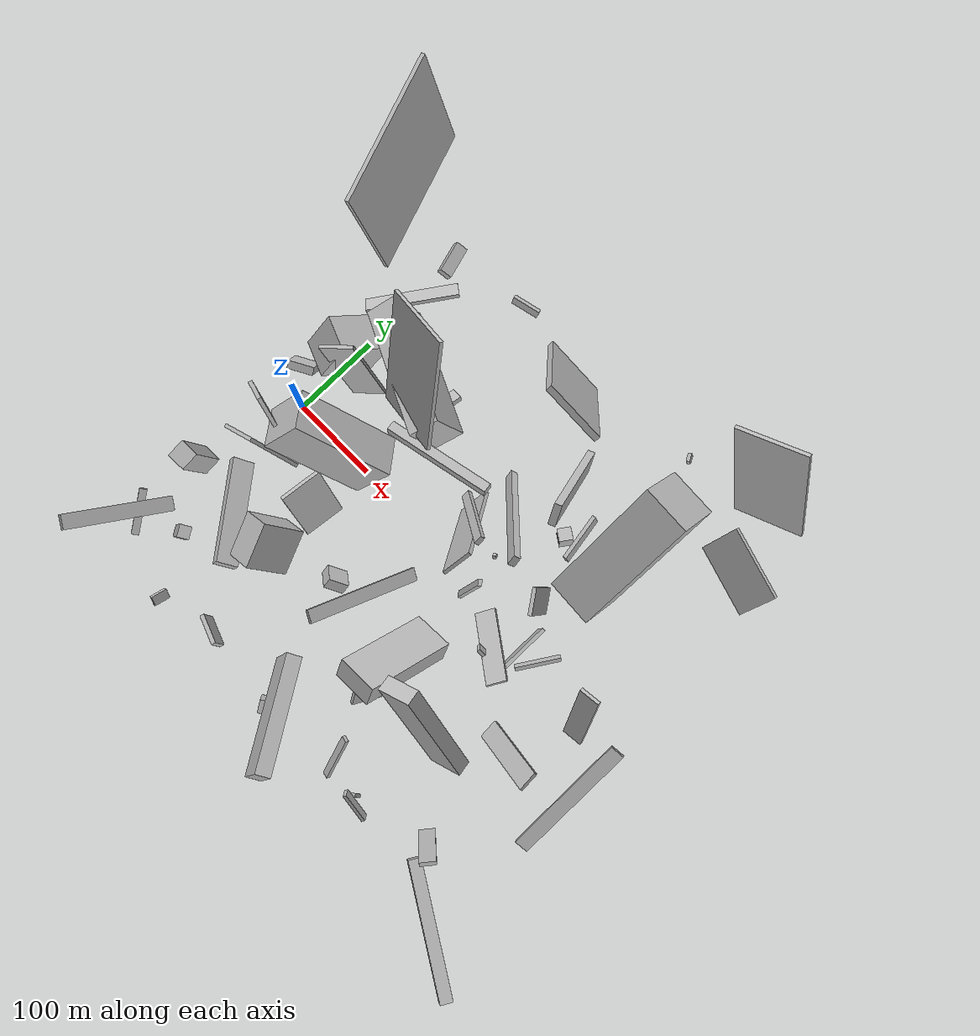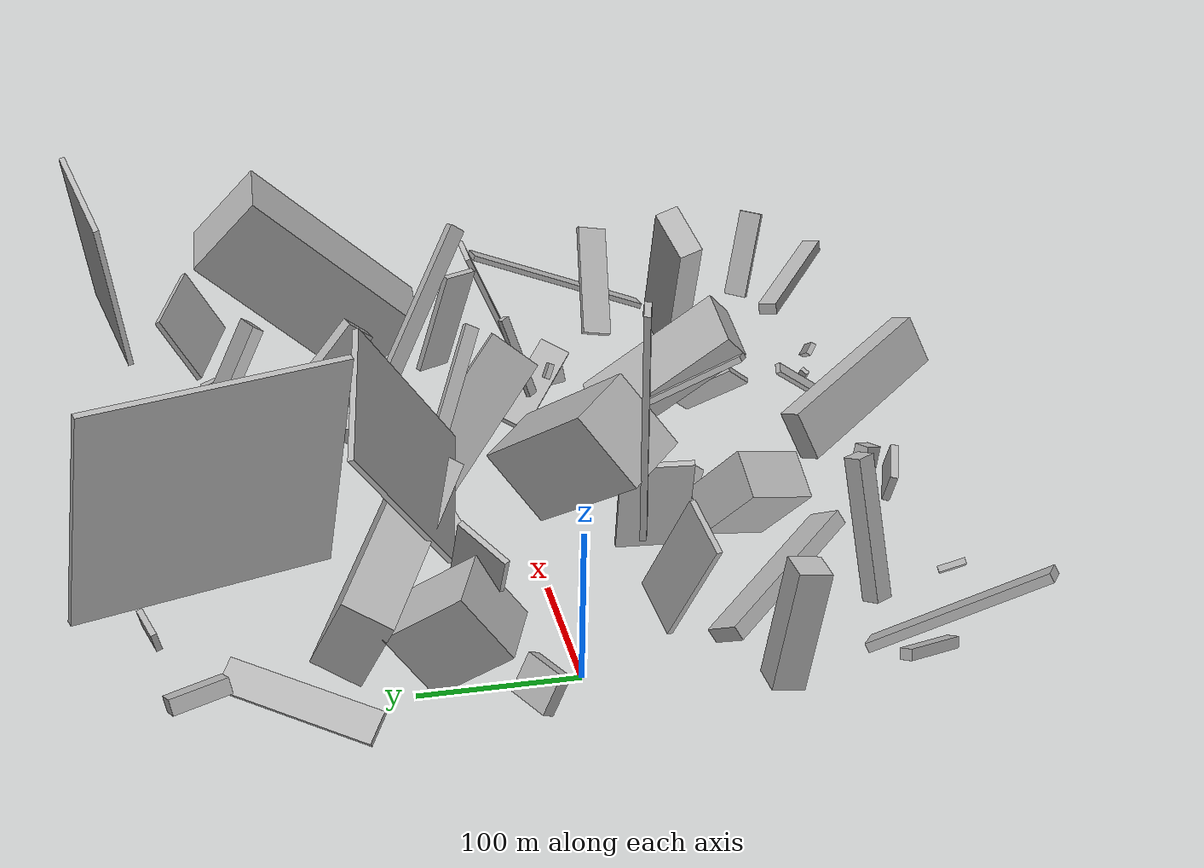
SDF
<sdf version="1.6">
 <world name="default">
  <scene>
   <sky><clouds><speed>12</speed></clouds></sky>
   <ambient>0.4 0.4 0.4 1</ambient>
   <background>0.7 0.7 0.7 1</background>
   <shadows>1</shadows>
  </scene>
  <gravity>0 0 -9.8066</gravity>
  <magnetic_field>6e-06 2.3e-05 -4.2e-05</magnetic_field>
  <physics default="0" name="default_physics" type="ode">
   <ode>
    <solver>
     <type>quick</type>
     <iters>10</iters>
     <sor>1.0</sor>
     <use_dynamic_moi_rescaling>0</use_dynamic_moi_rescaling>
    </solver>
    <constraints>
     <cfm>0</cfm>
     <erp>0.2</erp>
     <contact_max_correcting_vel>100</contact_max_correcting_vel>
     <contact_surface_layer>0.001</contact_surface_layer>
    </constraints>
   </ode>
   <max_step_size>0.004</max_step_size>
   <real_time_factor>1</real_time_factor>
   <real_time_update_rate>250</real_time_update_rate>
  </physics>
  <light name="sun" type="directional">
   <pose>0 0 10 0 0 0</pose>
   <diffuse>0.8 0.8 0.8 1</diffuse>
   <specular>0.2 0.2 0.2 1</specular>
   <attenuation>
    <range>1000</range>
    <constant>0.9</constant>
    <linear>0.01</linear>
    <quadratic>0.001</quadratic>
   </attenuation>
   <direction>-0.5 0.1 -0.9</direction>
  </light>
  <model name="building_1">
   <static>0</static>
   <pose>265.14244546166174 135.17548445861584 60.03859037932181 1.3756802465463545 -0.7001113702209841 2.0855696993592816</pose>
   <link name="link">
    <gravity>0</gravity>
    <pose>0 0 4.0 0 0 0</pose>
    <collision name="collision"><geometry><box><size>25 129 8</size></box></geometry></collision>
    <visual name="visual">
     <cast_shadows>0</cast_shadows>
     <geometry><box><size>25 129 8</size></box></geometry>
     <material>
      <script>
       <uri>model://HANNAS_wall/materials/scripts</uri>
       <uri>model://HANNAS_wall/materials/textures</uri>
       <name>vrc/HANNAS_wall</name>
      </script>
     </material>
    </visual>
   </link>
  </model>
  <model name="building_2">
   <static>0</static>
   <pose>114.75788647077268 6.026953983875815 81.59134620590223 -0.4962438982880689 -0.8402650516759184 1.0618286761251285</pose>
   <link name="link">
    <gravity>0</gravity>
    <pose>0 0 56.5 0 0 0</pose>
    <collision name="collision"><geometry><box><size>54 42 113</size></box></geometry></collision>
    <visual name="visual">
     <cast_shadows>0</cast_shadows>
     <geometry><box><size>54 42 113</size></box></geometry>
     <material>
      <script>
       <uri>model://HANNAS_wall/materials/scripts</uri>
       <uri>model://HANNAS_wall/materials/textures</uri>
       <name>vrc/HANNAS_wall</name>
      </script>
     </material>
    </visual>
   </link>
  </model>
  <model name="building_3">
   <static>0</static>
   <pose>310.71372122530795 106.14884809713209 55.163684908403575 -3.061093491712409 -0.20543114015867422 0.15504315731086096</pose>
   <link name="link">
    <gravity>0</gravity>
    <pose>0 0 12.5 0 0 0</pose>
    <collision name="collision"><geometry><box><size>4 52 25</size></box></geometry></collision>
    <visual name="visual">
     <cast_shadows>0</cast_shadows>
     <geometry><box><size>4 52 25</size></box></geometry>
     <material>
      <script>
       <uri>model://HANNAS_wall/materials/scripts</uri>
       <uri>model://HANNAS_wall/materials/textures</uri>
       <name>vrc/HANNAS_wall</name>
      </script>
     </material>
    </visual>
   </link>
  </model>
  <model name="building_4">
   <static>0</static>
   <pose>356.3587836922279 144.202506952811 91.24250384083928 -0.13050531046184422 -0.732868052518577 1.5899227856914215</pose>
   <link name="link">
    <gravity>0</gravity>
    <pose>0 0 32.0 0 0 0</pose>
    <collision name="collision"><geometry><box><size>150 52 64</size></box></geometry></collision>
    <visual name="visual">
     <cast_shadows>0</cast_shadows>
     <geometry><box><size>150 52 64</size></box></geometry>
     <material>
      <script>
       <uri>model://HANNAS_wall/materials/scripts</uri>
       <uri>model://HANNAS_wall/materials/textures</uri>
       <name>vrc/HANNAS_wall</name>
      </script>
     </material>
    </visual>
   </link>
  </model>
  <model name="building_5">
   <static>0</static>
   <pose>270.5699095374204 -125.13066369543276 53.91566012760417 0.4133081799194054 -0.6854892599942602 -1.7963671309122935</pose>
   <link name="link">
    <gravity>0</gravity>
    <pose>0 0 11.5 0 0 0</pose>
    <collision name="collision"><geometry><box><size>113 45 23</size></box></geometry></collision>
    <visual name="visual">
     <cast_shadows>0</cast_shadows>
     <geometry><box><size>113 45 23</size></box></geometry>
     <material>
      <script>
       <uri>model://HANNAS_wall/materials/scripts</uri>
       <uri>model://HANNAS_wall/materials/textures</uri>
       <name>vrc/HANNAS_wall</name>
      </script>
     </material>
    </visual>
   </link>
  </model>
  <model name="building_6">
   <static>0</static>
   <pose>370.5132886329299 188.64575256479142 31.142887368369884 -1.5100061487549081 0.4442974182073927 1.408436169438716</pose>
   <link name="link">
    <gravity>0</gravity>
    <pose>0 0 4.0 0 0 0</pose>
    <collision name="collision"><geometry><box><size>25 6 8</size></box></geometry></collision>
    <visual name="visual">
     <cast_shadows>0</cast_shadows>
     <geometry><box><size>25 6 8</size></box></geometry>
     <material>
      <script>
       <uri>model://HANNAS_wall/materials/scripts</uri>
       <uri>model://HANNAS_wall/materials/textures</uri>
       <name>vrc/HANNAS_wall</name>
      </script>
     </material>
    </visual>
   </link>
  </model>
  <model name="building_7">
   <static>0</static>
   <pose>-41.92350489183875 220.48775749975528 115.9052772441062 -0.033676207884948475 0.21880793894940057 -2.8164191527339155</pose>
   <link name="link">
    <gravity>0</gravity>
    <pose>0 0 69.5 0 0 0</pose>
    <collision name="collision"><geometry><box><size>4 150 139</size></box></geometry></collision>
    <visual name="visual">
     <cast_shadows>0</cast_shadows>
     <geometry><box><size>4 150 139</size></box></geometry>
     <material>
      <script>
       <uri>model://HANNAS_wall/materials/scripts</uri>
       <uri>model://HANNAS_wall/materials/textures</uri>
       <name>vrc/HANNAS_wall</name>
      </script>
     </material>
    </visual>
   </link>
  </model>
  <model name="building_8">
   <static>0</static>
   <pose>-1.5149551073901657 -66.8969660372422 51.9394556721918 1.106474439790734 -0.0926913348929218 1.8555338117103537</pose>
   <link name="link">
    <gravity>0</gravity>
    <pose>0 0 19.0 0 0 0</pose>
    <collision name="collision"><geometry><box><size>4 86 38</size></box></geometry></collision>
    <visual name="visual">
     <cast_shadows>0</cast_shadows>
     <geometry><box><size>4 86 38</size></box></geometry>
     <material>
      <script>
       <uri>model://HANNAS_wall/materials/scripts</uri>
       <uri>model://HANNAS_wall/materials/textures</uri>
       <name>vrc/HANNAS_wall</name>
      </script>
     </material>
    </visual>
   </link>
  </model>
  <model name="building_9">
   <static>0</static>
   <pose>363.36378159121074 -255.09062220531223 17.760055533111675 -0.7107508316553715 0.888856245564967 2.1156614008444836</pose>
   <link name="link">
    <gravity>0</gravity>
    <pose>0 0 19.0 0 0 0</pose>
    <collision name="collision"><geometry><box><size>9 4 38</size></box></geometry></collision>
    <visual name="visual">
     <cast_shadows>0</cast_shadows>
     <geometry><box><size>9 4 38</size></box></geometry>
     <material>
      <script>
       <uri>model://HANNAS_wall/materials/scripts</uri>
       <uri>model://HANNAS_wall/materials/textures</uri>
       <name>vrc/HANNAS_wall</name>
      </script>
     </material>
    </visual>
   </link>
  </model>
  <model name="building_10">
   <static>0</static>
   <pose>20.470459065231836 62.48543089032558 54.466111813269485 1.3630526893404882 -0.340245905272007 0.676698403618427</pose>
   <link name="link">
    <gravity>0</gravity>
    <pose>0 0 2.0 0 0 0</pose>
    <collision name="collision"><geometry><box><size>38 97 4</size></box></geometry></collision>
    <visual name="visual">
     <cast_shadows>0</cast_shadows>
     <geometry><box><size>38 97 4</size></box></geometry>
     <material>
      <script>
       <uri>model://HANNAS_wall/materials/scripts</uri>
       <uri>model://HANNAS_wall/materials/textures</uri>
       <name>vrc/HANNAS_wall</name>
      </script>
     </material>
    </visual>
   </link>
  </model>
  <model name="building_11">
   <static>0</static>
   <pose>323.4592263373231 -48.95701176949855 39.333744447181786 -1.174183021766758 0.38132641301218173 0.02923270111802859</pose>
   <link name="link">
    <gravity>0</gravity>
    <pose>0 0 2.0 0 0 0</pose>
    <collision name="collision"><geometry><box><size>9 11 4</size></box></geometry></collision>
    <visual name="visual">
     <cast_shadows>0</cast_shadows>
     <geometry><box><size>9 11 4</size></box></geometry>
     <material>
      <script>
       <uri>model://HANNAS_wall/materials/scripts</uri>
       <uri>model://HANNAS_wall/materials/textures</uri>
       <name>vrc/HANNAS_wall</name>
      </script>
     </material>
    </visual>
   </link>
  </model>
  <model name="building_12">
   <static>0</static>
   <pose>190.8233916649749 -194.23788918967674 42.276013585740195 0.9516223954312399 -1.1158815751130107 1.154713290447393</pose>
   <link name="link">
    <gravity>0</gravity>
    <pose>0 0 63.0 0 0 0</pose>
    <collision name="collision"><geometry><box><size>36 17 126</size></box></geometry></collision>
    <visual name="visual">
     <cast_shadows>0</cast_shadows>
     <geometry><box><size>36 17 126</size></box></geometry>
     <material>
      <script>
       <uri>model://HANNAS_wall/materials/scripts</uri>
       <uri>model://HANNAS_wall/materials/textures</uri>
       <name>vrc/HANNAS_wall</name>
      </script>
     </material>
    </visual>
   </link>
  </model>
  <model name="building_13">
   <static>0</static>
   <pose>387.0931538771444 -97.67154592393172 35.01707926904465 0.7507116505476162 -0.20906187691974526 1.6549879173880462</pose>
   <link name="link">
    <gravity>0</gravity>
    <pose>0 0 42.5 0 0 0</pose>
    <collision name="collision"><geometry><box><size>22 4 85</size></box></geometry></collision>
    <visual name="visual">
     <cast_shadows>0</cast_shadows>
     <geometry><box><size>22 4 85</size></box></geometry>
     <material>
      <script>
       <uri>model://HANNAS_wall/materials/scripts</uri>
       <uri>model://HANNAS_wall/materials/textures</uri>
       <name>vrc/HANNAS_wall</name>
      </script>
     </material>
    </visual>
   </link>
  </model>
  <model name="building_14">
   <static>0</static>
   <pose>3.517223955901734 163.3733176717465 14.13721116142176 -2.2172115263540424 -0.07840698915884739 0.9472088213521392</pose>
   <link name="link">
    <gravity>0</gravity>
    <pose>0 0 10.5 0 0 0</pose>
    <collision name="collision"><geometry><box><size>103 4 21</size></box></geometry></collision>
    <visual name="visual">
     <cast_shadows>0</cast_shadows>
     <geometry><box><size>103 4 21</size></box></geometry>
     <material>
      <script>
       <uri>model://HANNAS_wall/materials/scripts</uri>
       <uri>model://HANNAS_wall/materials/textures</uri>
       <name>vrc/HANNAS_wall</name>
      </script>
     </material>
    </visual>
   </link>
  </model>
  <model name="building_15">
   <static>0</static>
   <pose>232.6992043912517 203.61735745921914 77.16150950786312 1.1717241860654521 0.4700972435993757 -1.7009712719578165</pose>
   <link name="link">
    <gravity>0</gravity>
    <pose>0 0 35.5 0 0 0</pose>
    <collision name="collision"><geometry><box><size>7 135 71</size></box></geometry></collision>
    <visual name="visual">
     <cast_shadows>0</cast_shadows>
     <geometry><box><size>7 135 71</size></box></geometry>
     <material>
      <script>
       <uri>model://HANNAS_wall/materials/scripts</uri>
       <uri>model://HANNAS_wall/materials/textures</uri>
       <name>vrc/HANNAS_wall</name>
      </script>
     </material>
    </visual>
   </link>
  </model>
  <model name="building_16">
   <static>0</static>
   <pose>73.51725037040185 119.85878928312013 60.36897955334548 2.0206426588733386 -0.20462423257844928 -0.45283801258732936</pose>
   <link name="link">
    <gravity>0</gravity>
    <pose>0 0 17.0 0 0 0</pose>
    <collision name="collision"><geometry><box><size>148 58 34</size></box></geometry></collision>
    <visual name="visual">
     <cast_shadows>0</cast_shadows>
     <geometry><box><size>148 58 34</size></box></geometry>
     <material>
      <script>
       <uri>model://HANNAS_wall/materials/scripts</uri>
       <uri>model://HANNAS_wall/materials/textures</uri>
       <name>vrc/HANNAS_wall</name>
      </script>
     </material>
    </visual>
   </link>
  </model>
  <model name="building_17">
   <static>0</static>
   <pose>338.26290610075915 -248.60702349316256 7.344774875670867 1.1390510398908527 0.14522727269647862 2.2711272175368378</pose>
   <link name="link">
    <gravity>0</gravity>
    <pose>0 0 3.0 0 0 0</pose>
    <collision name="collision"><geometry><box><size>4 12 6</size></box></geometry></collision>
    <visual name="visual">
     <cast_shadows>0</cast_shadows>
     <geometry><box><size>4 12 6</size></box></geometry>
     <material>
      <script>
       <uri>model://HANNAS_wall/materials/scripts</uri>
       <uri>model://HANNAS_wall/materials/textures</uri>
       <name>vrc/HANNAS_wall</name>
      </script>
     </material>
    </visual>
   </link>
  </model>
  <model name="building_18">
   <static>0</static>
   <pose>261.1545740187173 33.810643965485895 8.980252682111558 -1.0749441871263052 0.8285156745315078 -0.5996521596736345</pose>
   <link name="link">
    <gravity>0</gravity>
    <pose>0 0 2.0 0 0 0</pose>
    <collision name="collision"><geometry><box><size>4 4 4</size></box></geometry></collision>
    <visual name="visual">
     <cast_shadows>0</cast_shadows>
     <geometry><box><size>4 4 4</size></box></geometry>
     <material>
      <script>
       <uri>model://HANNAS_wall/materials/scripts</uri>
       <uri>model://HANNAS_wall/materials/textures</uri>
       <name>vrc/HANNAS_wall</name>
      </script>
     </material>
    </visual>
   </link>
  </model>
  <model name="building_19">
   <static>0</static>
   <pose>223.2680723547307 10.727911013012601 51.41858022885761 -0.5278233064319244 -0.7642767774566342 -1.0484903309225584</pose>
   <link name="link">
    <gravity>0</gravity>
    <pose>0 0 19.5 0 0 0</pose>
    <collision name="collision"><geometry><box><size>104 4 39</size></box></geometry></collision>
    <visual name="visual">
     <cast_shadows>0</cast_shadows>
     <geometry><box><size>104 4 39</size></box></geometry>
     <material>
      <script>
       <uri>model://HANNAS_wall/materials/scripts</uri>
       <uri>model://HANNAS_wall/materials/textures</uri>
       <name>vrc/HANNAS_wall</name>
      </script>
     </material>
    </visual>
   </link>
  </model>
  <model name="building_20">
   <static>0</static>
   <pose>286.0279444036948 -134.29303240848117 26.02980771842391 -0.7871474114318682 -0.6789124945269589 2.070266764979193</pose>
   <link name="link">
    <gravity>0</gravity>
    <pose>0 0 26.0 0 0 0</pose>
    <collision name="collision"><geometry><box><size>25 4 52</size></box></geometry></collision>
    <visual name="visual">
     <cast_shadows>0</cast_shadows>
     <geometry><box><size>25 4 52</size></box></geometry>
     <material>
      <script>
       <uri>model://HANNAS_wall/materials/scripts</uri>
       <uri>model://HANNAS_wall/materials/textures</uri>
       <name>vrc/HANNAS_wall</name>
      </script>
     </material>
    </visual>
   </link>
  </model>
  <model name="building_21">
   <static>0</static>
   <pose>90.83422996510333 250.12206570069463 7.022131170869549 -3.057723032918085 -1.3278935250795043 1.7301085966204912</pose>
   <link name="link">
    <gravity>0</gravity>
    <pose>0 0 2.0 0 0 0</pose>
    <collision name="collision"><geometry><box><size>12 32 4</size></box></geometry></collision>
    <visual name="visual">
     <cast_shadows>0</cast_shadows>
     <geometry><box><size>12 32 4</size></box></geometry>
     <material>
      <script>
       <uri>model://HANNAS_wall/materials/scripts</uri>
       <uri>model://HANNAS_wall/materials/textures</uri>
       <name>vrc/HANNAS_wall</name>
      </script>
     </material>
    </visual>
   </link>
  </model>
  <model name="building_22">
   <static>0</static>
   <pose>373.7261402036714 -11.301691281781025 8.853808113074502 -2.9081624431725643 -1.1391465780542895 -0.7723883806664165</pose>
   <link name="link">
    <gravity>0</gravity>
    <pose>0 0 2.0 0 0 0</pose>
    <collision name="collision"><geometry><box><size>9 50 4</size></box></geometry></collision>
    <visual name="visual">
     <cast_shadows>0</cast_shadows>
     <geometry><box><size>9 50 4</size></box></geometry>
     <material>
      <script>
       <uri>model://HANNAS_wall/materials/scripts</uri>
       <uri>model://HANNAS_wall/materials/textures</uri>
       <name>vrc/HANNAS_wall</name>
      </script>
     </material>
    </visual>
   </link>
  </model>
  <model name="building_23">
   <static>0</static>
   <pose>323.15151659360316 -146.27203539847648 84.45621017888898 0.44122772532774396 -0.9262404747968481 2.953793198922185</pose>
   <link name="link">
    <gravity>0</gravity>
    <pose>0 0 19.0 0 0 0</pose>
    <collision name="collision"><geometry><box><size>150 17 38</size></box></geometry></collision>
    <visual name="visual">
     <cast_shadows>0</cast_shadows>
     <geometry><box><size>150 17 38</size></box></geometry>
     <material>
      <script>
       <uri>model://HANNAS_wall/materials/scripts</uri>
       <uri>model://HANNAS_wall/materials/textures</uri>
       <name>vrc/HANNAS_wall</name>
      </script>
     </material>
    </visual>
   </link>
  </model>
  <model name="building_24">
   <static>0</static>
   <pose>305.8788701677368 97.17362568745433 22.26301594471333 -2.95159610573193 1.2745333907991385 -0.42904631397088755</pose>
   <link name="link">
    <gravity>0</gravity>
    <pose>0 0 7.5 0 0 0</pose>
    <collision name="collision"><geometry><box><size>15 15 15</size></box></geometry></collision>
    <visual name="visual">
     <cast_shadows>0</cast_shadows>
     <geometry><box><size>15 15 15</size></box></geometry>
     <material>
      <script>
       <uri>model://HANNAS_wall/materials/scripts</uri>
       <uri>model://HANNAS_wall/materials/textures</uri>
       <name>vrc/HANNAS_wall</name>
      </script>
     </material>
    </visual>
   </link>
  </model>
  <model name="building_25">
   <static>0</static>
   <pose>-5.174557421823982 244.78314234932697 16.14957604948169 1.3216533936346124 -1.1558426815836913 0.5219521552360579</pose>
   <link name="link">
    <gravity>0</gravity>
    <pose>0 0 18.5 0 0 0</pose>
    <collision name="collision"><geometry><box><size>10 14 37</size></box></geometry></collision>
    <visual name="visual">
     <cast_shadows>0</cast_shadows>
     <geometry><box><size>10 14 37</size></box></geometry>
     <material>
      <script>
       <uri>model://HANNAS_wall/materials/scripts</uri>
       <uri>model://HANNAS_wall/materials/textures</uri>
       <name>vrc/HANNAS_wall</name>
      </script>
     </material>
    </visual>
   </link>
  </model>
  <model name="building_26">
   <static>0</static>
   <pose>92.22236693850702 -66.5253302337778 57.52510927224247 1.1769868915803066 0.02730639930291147 1.4531466460484104</pose>
   <link name="link">
    <gravity>0</gravity>
    <pose>0 0 2.0 0 0 0</pose>
    <collision name="collision"><geometry><box><size>46 81 4</size></box></geometry></collision>
    <visual name="visual">
     <cast_shadows>0</cast_shadows>
     <geometry><box><size>46 81 4</size></box></geometry>
     <material>
      <script>
       <uri>model://HANNAS_wall/materials/scripts</uri>
       <uri>model://HANNAS_wall/materials/textures</uri>
       <name>vrc/HANNAS_wall</name>
      </script>
     </material>
    </visual>
   </link>
  </model>
  <model name="building_27">
   <static>0</static>
   <pose>101.09914005709379 -225.94528513993345 48.332586251233536 -0.7914103167330159 -1.2895026273083374 -2.6657035096059825</pose>
   <link name="link">
    <gravity>0</gravity>
    <pose>0 0 16.5 0 0 0</pose>
    <collision name="collision"><geometry><box><size>20 5 33</size></box></geometry></collision>
    <visual name="visual">
     <cast_shadows>0</cast_shadows>
     <geometry><box><size>20 5 33</size></box></geometry>
     <material>
      <script>
       <uri>model://HANNAS_wall/materials/scripts</uri>
       <uri>model://HANNAS_wall/materials/textures</uri>
       <name>vrc/HANNAS_wall</name>
      </script>
     </material>
    </visual>
   </link>
  </model>
  <model name="building_28">
   <static>0</static>
   <pose>403.3492543804827 265.3425833213717 116.61490361345474 2.0454004753792385 -1.1129012525578825 2.9123535896849804</pose>
   <link name="link">
    <gravity>0</gravity>
    <pose>0 0 2.0 0 0 0</pose>
    <collision name="collision"><geometry><box><size>150 75 4</size></box></geometry></collision>
    <visual name="visual">
     <cast_shadows>0</cast_shadows>
     <geometry><box><size>150 75 4</size></box></geometry>
     <material>
      <script>
       <uri>model://HANNAS_wall/materials/scripts</uri>
       <uri>model://HANNAS_wall/materials/textures</uri>
       <name>vrc/HANNAS_wall</name>
      </script>
     </material>
    </visual>
   </link>
  </model>
  <model name="building_29">
   <static>0</static>
   <pose>293.96789597935094 -231.42957093662213 23.852066691122644 0.8883631462218556 0.6829078357766455 0.9448347898662943</pose>
   <link name="link">
    <gravity>0</gravity>
    <pose>0 0 4.0 0 0 0</pose>
    <collision name="collision"><geometry><box><size>4 57 8</size></box></geometry></collision>
    <visual name="visual">
     <cast_shadows>0</cast_shadows>
     <geometry><box><size>4 57 8</size></box></geometry>
     <material>
      <script>
       <uri>model://HANNAS_wall/materials/scripts</uri>
       <uri>model://HANNAS_wall/materials/textures</uri>
       <name>vrc/HANNAS_wall</name>
      </script>
     </material>
    </visual>
   </link>
  </model>
  <model name="building_30">
   <static>0</static>
   <pose>320.14664137989746 38.403016107775436 86.86480147233148 1.6887345100044506 -0.25537465705929585 0.5953876938171634</pose>
   <link name="link">
    <gravity>0</gravity>
    <pose>0 0 14.0 0 0 0</pose>
    <collision name="collision"><geometry><box><size>4 79 28</size></box></geometry></collision>
    <visual name="visual">
     <cast_shadows>0</cast_shadows>
     <geometry><box><size>4 79 28</size></box></geometry>
     <material>
      <script>
       <uri>model://HANNAS_wall/materials/scripts</uri>
       <uri>model://HANNAS_wall/materials/textures</uri>
       <name>vrc/HANNAS_wall</name>
      </script>
     </material>
    </visual>
   </link>
  </model>
  <model name="building_31">
   <static>0</static>
   <pose>427.8627826113875 -245.56456645252928 23.992764335563336 1.8721596421783055 -1.412782562206871 0.7238091172589626</pose>
   <link name="link">
    <gravity>0</gravity>
    <pose>0 0 75.0 0 0 0</pose>
    <collision name="collision"><geometry><box><size>9 14 150</size></box></geometry></collision>
    <visual name="visual">
     <cast_shadows>0</cast_shadows>
     <geometry><box><size>9 14 150</size></box></geometry>
     <material>
      <script>
       <uri>model://HANNAS_wall/materials/scripts</uri>
       <uri>model://HANNAS_wall/materials/textures</uri>
       <name>vrc/HANNAS_wall</name>
      </script>
     </material>
    </visual>
   </link>
  </model>
  <model name="building_32">
   <static>0</static>
   <pose>487.6185518684163 -90.31555548321703 33.1460395802004 1.8134293330262756 1.16495036883388 1.8925450085676454</pose>
   <link name="link">
    <gravity>0</gravity>
    <pose>0 0 8.0 0 0 0</pose>
    <collision name="collision"><geometry><box><size>4 150 16</size></box></geometry></collision>
    <visual name="visual">
     <cast_shadows>0</cast_shadows>
     <geometry><box><size>4 150 16</size></box></geometry>
     <material>
      <script>
       <uri>model://HANNAS_wall/materials/scripts</uri>
       <uri>model://HANNAS_wall/materials/textures</uri>
       <name>vrc/HANNAS_wall</name>
      </script>
     </material>
    </visual>
   </link>
  </model>
  <model name="building_33">
   <static>0</static>
   <pose>333.60754042828876 -27.30201888252811 31.293738538806828 1.9553975125474696 -0.34275544415971093 -0.6349619958633426</pose>
   <link name="link">
    <gravity>0</gravity>
    <pose>0 0 11.5 0 0 0</pose>
    <collision name="collision"><geometry><box><size>81 4 23</size></box></geometry></collision>
    <visual name="visual">
     <cast_shadows>0</cast_shadows>
     <geometry><box><size>81 4 23</size></box></geometry>
     <material>
      <script>
       <uri>model://HANNAS_wall/materials/scripts</uri>
       <uri>model://HANNAS_wall/materials/textures</uri>
       <name>vrc/HANNAS_wall</name>
      </script>
     </material>
    </visual>
   </link>
  </model>
  <model name="building_34">
   <static>0</static>
   <pose>216.8416377221996 99.62724412128354 62.52467119379164 0.38329240879731885 -0.629408521616825 1.7132281653941828</pose>
   <link name="link">
    <gravity>0</gravity>
    <pose>0 0 75.0 0 0 0</pose>
    <collision name="collision"><geometry><box><size>11 7 150</size></box></geometry></collision>
    <visual name="visual">
     <cast_shadows>0</cast_shadows>
     <geometry><box><size>11 7 150</size></box></geometry>
     <material>
      <script>
       <uri>model://HANNAS_wall/materials/scripts</uri>
       <uri>model://HANNAS_wall/materials/textures</uri>
       <name>vrc/HANNAS_wall</name>
      </script>
     </material>
    </visual>
   </link>
  </model>
  <model name="building_35">
   <static>0</static>
   <pose>334.88072016366584 256.7905222527666 14.902216602410306 0.02413154474372898 -0.30670283135948945 0.489536884183614</pose>
   <link name="link">
    <gravity>0</gravity>
    <pose>0 0 6.5 0 0 0</pose>
    <collision name="collision"><geometry><box><size>4 9 13</size></box></geometry></collision>
    <visual name="visual">
     <cast_shadows>0</cast_shadows>
     <geometry><box><size>4 9 13</size></box></geometry>
     <material>
      <script>
       <uri>model://HANNAS_wall/materials/scripts</uri>
       <uri>model://HANNAS_wall/materials/textures</uri>
       <name>vrc/HANNAS_wall</name>
      </script>
     </material>
    </visual>
   </link>
  </model>
  <model name="building_36">
   <static>0</static>
   <pose>415.2859273532211 -214.4565922311584 44.32508095868447 0.3523897990769565 -0.015987782673001886 0.9067105150822428</pose>
   <link name="link">
    <gravity>0</gravity>
    <pose>0 0 32.5 0 0 0</pose>
    <collision name="collision"><geometry><box><size>17 4 65</size></box></geometry></collision>
    <visual name="visual">
     <cast_shadows>0</cast_shadows>
     <geometry><box><size>17 4 65</size></box></geometry>
     <material>
      <script>
       <uri>model://HANNAS_wall/materials/scripts</uri>
       <uri>model://HANNAS_wall/materials/textures</uri>
       <name>vrc/HANNAS_wall</name>
      </script>
     </material>
    </visual>
   </link>
  </model>
  <model name="building_37">
   <static>0</static>
   <pose>-15.232354337213279 37.77328633922311 19.83500145659877 1.6735861458288979 -1.0690575871069912 -1.1638981885174033</pose>
   <link name="link">
    <gravity>0</gravity>
    <pose>0 0 14.5 0 0 0</pose>
    <collision name="collision"><geometry><box><size>26 9 29</size></box></geometry></collision>
    <visual name="visual">
     <cast_shadows>0</cast_shadows>
     <geometry><box><size>26 9 29</size></box></geometry>
     <material>
      <script>
       <uri>model://HANNAS_wall/materials/scripts</uri>
       <uri>model://HANNAS_wall/materials/textures</uri>
       <name>vrc/HANNAS_wall</name>
      </script>
     </material>
    </visual>
   </link>
  </model>
  <model name="building_38">
   <static>0</static>
   <pose>-19.249419730106325 -121.06407127276721 42.74564835967457 1.5092150029523286 -1.415486462555843 -1.4766249001282714</pose>
   <link name="link">
    <gravity>0</gravity>
    <pose>0 0 10.5 0 0 0</pose>
    <collision name="collision"><geometry><box><size>79 21 21</size></box></geometry></collision>
    <visual name="visual">
     <cast_shadows>0</cast_shadows>
     <geometry><box><size>79 21 21</size></box></geometry>
     <material>
      <script>
       <uri>model://HANNAS_wall/materials/scripts</uri>
       <uri>model://HANNAS_wall/materials/textures</uri>
       <name>vrc/HANNAS_wall</name>
      </script>
     </material>
    </visual>
   </link>
  </model>
  <model name="building_39">
   <static>0</static>
   <pose>-21.74395538187757 84.27579095099735 45.874937735363886 1.4115285428050823 0.6454275771641945 1.0886751754346298</pose>
   <link name="link">
    <gravity>0</gravity>
    <pose>0 0 20.5 0 0 0</pose>
    <collision name="collision"><geometry><box><size>60 49 41</size></box></geometry></collision>
    <visual name="visual">
     <cast_shadows>0</cast_shadows>
     <geometry><box><size>60 49 41</size></box></geometry>
     <material>
      <script>
       <uri>model://HANNAS_wall/materials/scripts</uri>
       <uri>model://HANNAS_wall/materials/textures</uri>
       <name>vrc/HANNAS_wall</name>
      </script>
     </material>
    </visual>
   </link>
  </model>
  <model name="building_40">
   <static>0</static>
   <pose>79.0443753431898 90.87315451673373 123.73262735623206 2.201910130284409 -0.914064753888258 2.2148867978312565</pose>
   <link name="link">
    <gravity>0</gravity>
    <pose>0 0 2.0 0 0 0</pose>
    <collision name="collision"><geometry><box><size>132 90 4</size></box></geometry></collision>
    <visual name="visual">
     <cast_shadows>0</cast_shadows>
     <geometry><box><size>132 90 4</size></box></geometry>
     <material>
      <script>
       <uri>model://HANNAS_wall/materials/scripts</uri>
       <uri>model://HANNAS_wall/materials/textures</uri>
       <name>vrc/HANNAS_wall</name>
      </script>
     </material>
    </visual>
   </link>
  </model>
  <model name="building_41">
   <static>0</static>
   <pose>149.63043734157455 56.063004108897914 41.446442458184706 2.435744747136594 -1.3314940923668985 2.4550642668012417</pose>
   <link name="link">
    <gravity>0</gravity>
    <pose>0 0 5.5 0 0 0</pose>
    <collision name="collision"><geometry><box><size>12 125 11</size></box></geometry></collision>
    <visual name="visual">
     <cast_shadows>0</cast_shadows>
     <geometry><box><size>12 125 11</size></box></geometry>
     <material>
      <script>
       <uri>model://HANNAS_wall/materials/scripts</uri>
       <uri>model://HANNAS_wall/materials/textures</uri>
       <name>vrc/HANNAS_wall</name>
      </script>
     </material>
    </visual>
   </link>
  </model>
  <model name="building_42">
   <static>0</static>
   <pose>-22.513133783672103 -224.49197661746888 12.611935705329739 -0.8471589493632603 -1.1609088169374169 -0.11490771055354138</pose>
   <link name="link">
    <gravity>0</gravity>
    <pose>0 0 25.0 0 0 0</pose>
    <collision name="collision"><geometry><box><size>7 8 50</size></box></geometry></collision>
    <visual name="visual">
     <cast_shadows>0</cast_shadows>
     <geometry><box><size>7 8 50</size></box></geometry>
     <material>
      <script>
       <uri>model://HANNAS_wall/materials/scripts</uri>
       <uri>model://HANNAS_wall/materials/textures</uri>
       <name>vrc/HANNAS_wall</name>
      </script>
     </material>
    </visual>
   </link>
  </model>
  <model name="building_43">
   <static>0</static>
   <pose>220.17495288821743 37.189567931026986 92.67450382650236 2.205804929897383 -0.49749818468928647 1.573649493332108</pose>
   <link name="link">
    <gravity>0</gravity>
    <pose>0 0 2.5 0 0 0</pose>
    <collision name="collision"><geometry><box><size>10 78 5</size></box></geometry></collision>
    <visual name="visual">
     <cast_shadows>0</cast_shadows>
     <geometry><box><size>10 78 5</size></box></geometry>
     <material>
      <script>
       <uri>model://HANNAS_wall/materials/scripts</uri>
       <uri>model://HANNAS_wall/materials/textures</uri>
       <name>vrc/HANNAS_wall</name>
      </script>
     </material>
    </visual>
   </link>
  </model>
  <model name="building_44">
   <static>0</static>
   <pose>354.77081853803634 -24.76575513422455 16.429565136810922 -0.876728546838311 -1.338600550814135 0.8481229570352421</pose>
   <link name="link">
    <gravity>0</gravity>
    <pose>0 0 2.0 0 0 0</pose>
    <collision name="collision"><geometry><box><size>15 81 4</size></box></geometry></collision>
    <visual name="visual">
     <cast_shadows>0</cast_shadows>
     <geometry><box><size>15 81 4</size></box></geometry>
     <material>
      <script>
       <uri>model://HANNAS_wall/materials/scripts</uri>
       <uri>model://HANNAS_wall/materials/textures</uri>
       <name>vrc/HANNAS_wall</name>
      </script>
     </material>
    </visual>
   </link>
  </model>
  <model name="building_45">
   <static>0</static>
   <pose>157.27088784746854 -99.63938888419798 24.776382817067343 0.7809791605438902 0.5169993769953372 0.5099262187594993</pose>
   <link name="link">
    <gravity>0</gravity>
    <pose>0 0 10.5 0 0 0</pose>
    <collision name="collision"><geometry><box><size>23 13 21</size></box></geometry></collision>
    <visual name="visual">
     <cast_shadows>0</cast_shadows>
     <geometry><box><size>23 13 21</size></box></geometry>
     <material>
      <script>
       <uri>model://HANNAS_wall/materials/scripts</uri>
       <uri>model://HANNAS_wall/materials/textures</uri>
       <name>vrc/HANNAS_wall</name>
      </script>
     </material>
    </visual>
   </link>
  </model>
  <model name="building_46">
   <static>0</static>
   <pose>112.70750204562937 119.00923679578011 6.629793291553142 3.039246093431454 1.0936392481696704 -0.22948404375982487</pose>
   <link name="link">
    <gravity>0</gravity>
    <pose>0 0 7.0 0 0 0</pose>
    <collision name="collision"><geometry><box><size>6 21 14</size></box></geometry></collision>
    <visual name="visual">
     <cast_shadows>0</cast_shadows>
     <geometry><box><size>6 21 14</size></box></geometry>
     <material>
      <script>
       <uri>model://HANNAS_wall/materials/scripts</uri>
       <uri>model://HANNAS_wall/materials/textures</uri>
       <name>vrc/HANNAS_wall</name>
      </script>
     </material>
    </visual>
   </link>
  </model>
  <model name="building_47">
   <static>0</static>
   <pose>267.1985636359905 -23.25295089580485 52.3621915894344 -0.2860434591342565 -0.19397689175014313 -0.9394419824295378</pose>
   <link name="link">
    <gravity>0</gravity>
    <pose>0 0 30.0 0 0 0</pose>
    <collision name="collision"><geometry><box><size>7 4 60</size></box></geometry></collision>
    <visual name="visual">
     <cast_shadows>0</cast_shadows>
     <geometry><box><size>7 4 60</size></box></geometry>
     <material>
      <script>
       <uri>model://HANNAS_wall/materials/scripts</uri>
       <uri>model://HANNAS_wall/materials/textures</uri>
       <name>vrc/HANNAS_wall</name>
      </script>
     </material>
    </visual>
   </link>
  </model>
  <model name="building_48">
   <static>0</static>
   <pose>37.681469516859345 -134.7582240718875 28.138741660718544 0.27701543130493744 -0.5256195722282289 -2.5783163888386698</pose>
   <link name="link">
    <gravity>0</gravity>
    <pose>0 0 5.0 0 0 0</pose>
    <collision name="collision"><geometry><box><size>24 118 10</size></box></geometry></collision>
    <visual name="visual">
     <cast_shadows>0</cast_shadows>
     <geometry><box><size>24 118 10</size></box></geometry>
     <material>
      <script>
       <uri>model://HANNAS_wall/materials/scripts</uri>
       <uri>model://HANNAS_wall/materials/textures</uri>
       <name>vrc/HANNAS_wall</name>
      </script>
     </material>
    </visual>
   </link>
  </model>
  <model name="building_49">
   <static>0</static>
   <pose>29.768832055199276 -179.39499441671944 67.46159114106496 1.2803711381658398 0.043995425984488995 -1.0228674918196208</pose>
   <link name="link">
    <gravity>0</gravity>
    <pose>0 0 6.0 0 0 0</pose>
    <collision name="collision"><geometry><box><size>13 92 12</size></box></geometry></collision>
    <visual name="visual">
     <cast_shadows>0</cast_shadows>
     <geometry><box><size>13 92 12</size></box></geometry>
     <material>
      <script>
       <uri>model://HANNAS_wall/materials/scripts</uri>
       <uri>model://HANNAS_wall/materials/textures</uri>
       <name>vrc/HANNAS_wall</name>
      </script>
     </material>
    </visual>
   </link>
  </model>
  <model name="building_50">
   <static>0</static>
   <pose>79.24069997662967 -130.4109036194281 52.01443204357464 0.8973249855983689 -0.28807841395312667 1.9343786722165879</pose>
   <link name="link">
    <gravity>0</gravity>
    <pose>0 0 16.0 0 0 0</pose>
    <collision name="collision"><geometry><box><size>49 52 32</size></box></geometry></collision>
    <visual name="visual">
     <cast_shadows>0</cast_shadows>
     <geometry><box><size>49 52 32</size></box></geometry>
     <material>
      <script>
       <uri>model://HANNAS_wall/materials/scripts</uri>
       <uri>model://HANNAS_wall/materials/textures</uri>
       <name>vrc/HANNAS_wall</name>
      </script>
     </material>
    </visual>
   </link>
  </model>
  <model name="building_51">
   <static>0</static>
   <pose>453.4271231494515 204.3376832302962 36.630634748210205 1.0189653235711518 -0.03973471598896647 -0.2971235046182083</pose>
   <link name="link">
    <gravity>0</gravity>
    <pose>0 0 2.0 0 0 0</pose>
    <collision name="collision"><geometry><box><size>81 54 4</size></box></geometry></collision>
    <visual name="visual">
     <cast_shadows>0</cast_shadows>
     <geometry><box><size>81 54 4</size></box></geometry>
     <material>
      <script>
       <uri>model://HANNAS_wall/materials/scripts</uri>
       <uri>model://HANNAS_wall/materials/textures</uri>
       <name>vrc/HANNAS_wall</name>
      </script>
     </material>
    </visual>
   </link>
  </model>
  <model name="building_52">
   <static>0</static>
   <pose>442.75035768864086 -23.78879943082424 51.55641457618802 2.560190195209302 -1.0818074491638157 2.2024310696107325</pose>
   <link name="link">
    <gravity>0</gravity>
    <pose>0 0 2.0 0 0 0</pose>
    <collision name="collision"><geometry><box><size>96 23 4</size></box></geometry></collision>
    <visual name="visual">
     <cast_shadows>0</cast_shadows>
     <geometry><box><size>96 23 4</size></box></geometry>
     <material>
      <script>
       <uri>model://HANNAS_wall/materials/scripts</uri>
       <uri>model://HANNAS_wall/materials/textures</uri>
       <name>vrc/HANNAS_wall</name>
      </script>
     </material>
    </visual>
   </link>
  </model>
  <model name="building_53">
   <static>0</static>
   <pose>45.82221339021077 -258.43500732425264 23.49791470491671 2.026429180496166 -0.6311263950176964 2.6847320891460202</pose>
   <link name="link">
    <gravity>0</gravity>
    <pose>0 0 9.0 0 0 0</pose>
    <collision name="collision"><geometry><box><size>11 4 18</size></box></geometry></collision>
    <visual name="visual">
     <cast_shadows>0</cast_shadows>
     <geometry><box><size>11 4 18</size></box></geometry>
     <material>
      <script>
       <uri>model://HANNAS_wall/materials/scripts</uri>
       <uri>model://HANNAS_wall/materials/textures</uri>
       <name>vrc/HANNAS_wall</name>
      </script>
     </material>
    </visual>
   </link>
  </model>
  <model name="building_54">
   <static>0</static>
   <pose>210.34092187551977 -246.30672569830944 12.51100305102928 -1.3296952854513975 1.2452884533278086 2.3827634554630466</pose>
   <link name="link">
    <gravity>0</gravity>
    <pose>0 0 5.5 0 0 0</pose>
    <collision name="collision"><geometry><box><size>16 15 11</size></box></geometry></collision>
    <visual name="visual">
     <cast_shadows>0</cast_shadows>
     <geometry><box><size>16 15 11</size></box></geometry>
     <material>
      <script>
       <uri>model://HANNAS_wall/materials/scripts</uri>
       <uri>model://HANNAS_wall/materials/textures</uri>
       <name>vrc/HANNAS_wall</name>
      </script>
     </material>
    </visual>
   </link>
  </model>
  <model name="building_55">
   <static>0</static>
   <pose>24.440106894936804 -41.534338187188816 82.35421071461188 -0.011977779235873481 -0.05544546129882479 -0.2771375609624521</pose>
   <link name="link">
    <gravity>0</gravity>
    <pose>0 0 75.0 0 0 0</pose>
    <collision name="collision"><geometry><box><size>18 4 150</size></box></geometry></collision>
    <visual name="visual">
     <cast_shadows>0</cast_shadows>
     <geometry><box><size>18 4 150</size></box></geometry>
     <material>
      <script>
       <uri>model://HANNAS_wall/materials/scripts</uri>
       <uri>model://HANNAS_wall/materials/textures</uri>
       <name>vrc/HANNAS_wall</name>
      </script>
     </material>
    </visual>
   </link>
  </model>
  <model name="building_56">
   <static>0</static>
   <pose>218.7199198819975 -41.56676072994623 41.827004730635956 -0.9964472555685959 -0.260874455242529 2.6416887452263182</pose>
   <link name="link">
    <gravity>0</gravity>
    <pose>0 0 66.0 0 0 0</pose>
    <collision name="collision"><geometry><box><size>14 4 132</size></box></geometry></collision>
    <visual name="visual">
     <cast_shadows>0</cast_shadows>
     <geometry><box><size>14 4 132</size></box></geometry>
     <material>
      <script>
       <uri>model://HANNAS_wall/materials/scripts</uri>
       <uri>model://HANNAS_wall/materials/textures</uri>
       <name>vrc/HANNAS_wall</name>
      </script>
     </material>
    </visual>
   </link>
  </model>
  <model name="building_57">
   <static>0</static>
   <pose>-34.810573582459455 -222.2642599182208 46.8819009322966 1.2513108770215988 0.9410736139389447 -2.4355073501829962</pose>
   <link name="link">
    <gravity>0</gravity>
    <pose>0 0 8.0 0 0 0</pose>
    <collision name="collision"><geometry><box><size>6 121 16</size></box></geometry></collision>
    <visual name="visual">
     <cast_shadows>0</cast_shadows>
     <geometry><box><size>6 121 16</size></box></geometry>
     <material>
      <script>
       <uri>model://HANNAS_wall/materials/scripts</uri>
       <uri>model://HANNAS_wall/materials/textures</uri>
       <name>vrc/HANNAS_wall</name>
      </script>
     </material>
    </visual>
   </link>
  </model>
 </world>
</sdf>
